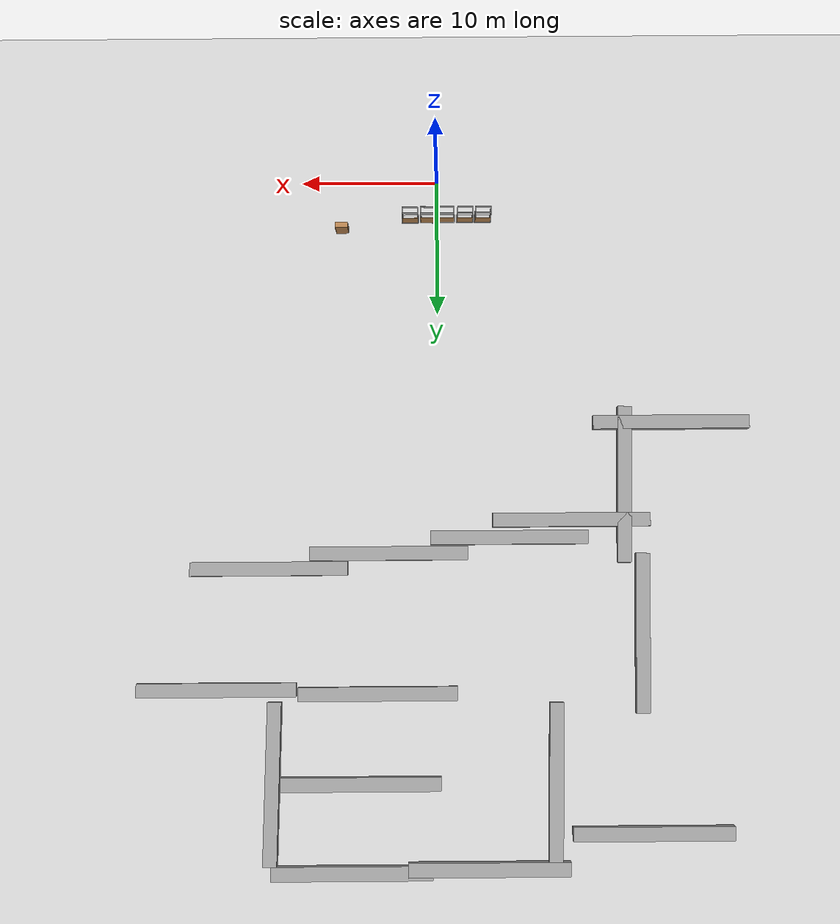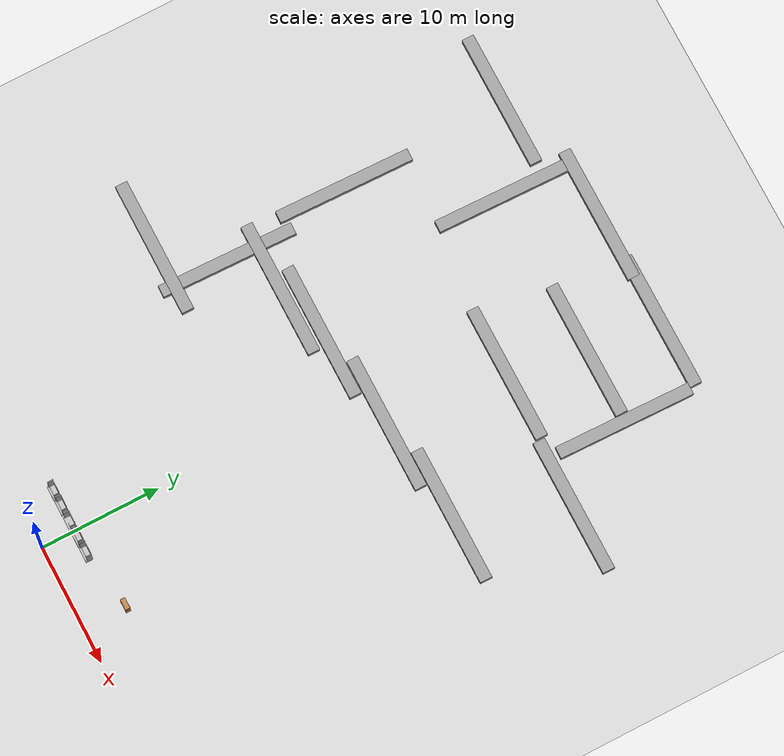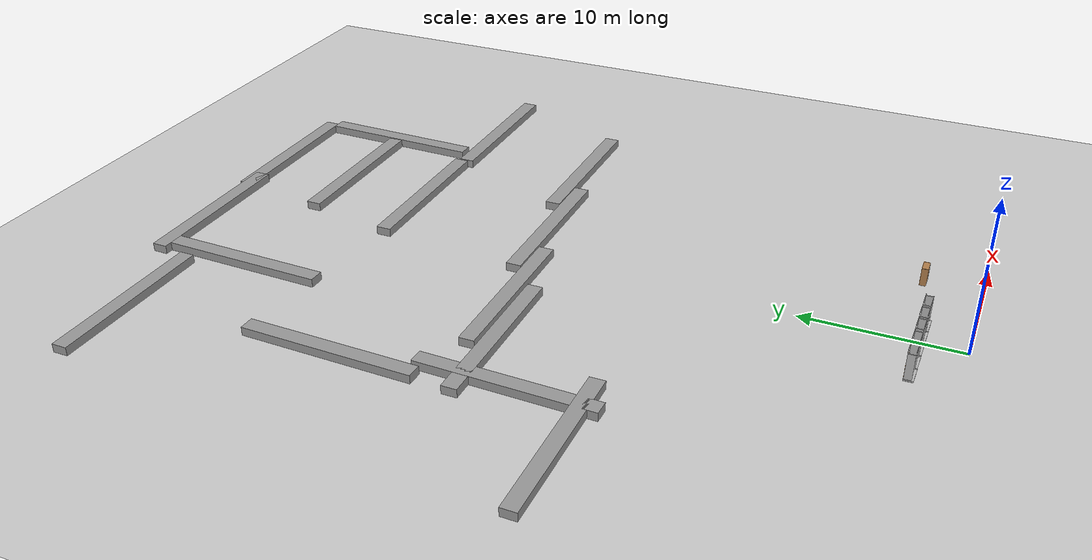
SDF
<sdf version="1.6">
 <world name="default">
  <model name="ground_plane">
   <static>1</static>
   <link name="link">
    <collision name="collision">
     <geometry><plane><normal>0 0 1</normal><size>100 100</size></plane></geometry>
     <surface><friction><ode><mu>100</mu><mu2>50</mu2></ode></friction></surface>
    </collision>
    <visual name="visual">
     <cast_shadows>0</cast_shadows>
     <geometry><plane><normal>0 0 1</normal><size>100 100</size></plane></geometry>
     <material>
      <script><uri>file://media/materials/scripts/gazebo.material</uri><name>Gazebo/Grey</name></script>
     </material>
    </visual>
   </link>
  </model>
  <model name="frc2016_drawbridge_clone">
   <link name="base">
    <inertial>
     <mass>10</mass>
     <pose>0 0 1 0 -0 0</pose>
     <inertia><ixx>3.64907</ixx><ixy>0</ixy><ixz>0</ixz><iyy>4.67075</iyy><iyz>0</iyz><izz>1.66649</izz></inertia>
    </inertial>
    <visual name="platform">
     <pose>0 0 0.0425 0 -0 0</pose>
     <geometry><box><size>1.27 0.5969 0.085</size></box></geometry>
    </visual>
    <collision name="platform">
     <pose>0 0 0.0425 0 -0 0</pose>
     <geometry><box><size>1.27 0.5969 0.085</size></box></geometry>
    </collision>
    <visual name="right_wall">
     <pose>0.55879 0.04444 0.889 0 -0 0</pose>
     <geometry><box><size>0.05715 0.45698 1.77165</size></box></geometry>
    </visual>
    <collision name="right_wall">
     <pose>0.55879 0.04444 0.889 0 -0 0</pose>
     <geometry><box><size>0.05715 0.45698 1.77165</size></box></geometry>
    </collision>
    <visual name="left_wall">
     <pose>-0.55879 0.04444 0.889 0 -0 0</pose>
     <geometry><box><size>0.05715 0.45698 1.77165</size></box></geometry>
    </visual>
    <collision name="left_wall">
     <pose>-0.55879 0.04444 0.889 0 -0 0</pose>
     <geometry><box><size>0.05715 0.45698 1.77165</size></box></geometry>
    </collision>
    <visual name="front_upper_wall">
     <pose>0 0.27611 1.84286 0 -0 0</pose>
     <geometry><box><size>1.1557 0.006347 0.254</size></box></geometry>
    </visual>
    <collision name="front_upper_wall">
     <pose>0 0.27611 1.84286 0 -0 0</pose>
     <geometry><box><size>1.1557 0.006347 0.254</size></box></geometry>
    </collision>
    <visual name="back_upper_wall">
     <pose>0 -0.18722 1.84286 0 -0 0</pose>
     <geometry><box><size>1.1557 0.006347 0.254</size></box></geometry>
    </visual>
    <collision name="back_upper_wall">
     <pose>0 -0.18722 1.84286 0 -0 0</pose>
     <geometry><box><size>1.1557 0.006347 0.254</size></box></geometry>
    </collision>
   </link>
   <link name="bridge">
    <pose>0 0.28245 0.50577 0 -0 0</pose>
    <inertial>
     <mass>2</mass>
     <pose>0 -0.28245 -0.50577 0 -0 0</pose>
     <inertia>
      <ixx>0.139361</ixx>
      <ixy>0</ixy>
      <ixz>0</ixz>
      <iyy>0.357088</iyy>
      <iyz>0</iyz>
      <izz>0.217741</izz>
     </inertia>
    </inertial>
    <visual name="visual">
     <geometry><box><size>1.14298 0.006347 0.9144</size></box></geometry>
     <material><script><name>Gazebo/WoodFloor</name><uri>__default__</uri></script></material>
    </visual>
    <collision name="collision"><geometry><box><size>1.14298 0.006347 0.9144</size></box></geometry></collision>
   </link>
   <joint name="bridge_joint" type="revolute">
    <pose>0 0 -0.4172 0 -0 0</pose>
    <parent>base</parent>
    <child>bridge</child>
    <axis>
     <xyz>1 0 0</xyz>
     <limit><lower>-2</lower><upper>0</upper></limit>
     <use_parent_model_frame>0</use_parent_model_frame>
     <dynamics><spring_reference>0</spring_reference><spring_stiffness>0</spring_stiffness></dynamics>
    </axis>
   </joint>
   <pose>1.94909 2.77291 -3e-06 -2e-06 4e-06 -0.005775</pose>
  </model>
  <model name="frc2016_drawbridge_clone_4">
   <link name="base">
    <inertial>
     <mass>10</mass>
     <pose>0 0 1 0 -0 0</pose>
     <inertia><ixx>3.64907</ixx><ixy>0</ixy><ixz>0</ixz><iyy>4.67075</iyy><iyz>0</iyz><izz>1.66649</izz></inertia>
    </inertial>
    <visual name="platform">
     <pose>0 0 0.0425 0 -0 0</pose>
     <geometry><box><size>1.27 0.5969 0.085</size></box></geometry>
    </visual>
    <collision name="platform">
     <pose>0 0 0.0425 0 -0 0</pose>
     <geometry><box><size>1.27 0.5969 0.085</size></box></geometry>
    </collision>
    <visual name="right_wall">
     <pose>0.55879 0.04444 0.889 0 -0 0</pose>
     <geometry><box><size>0.05715 0.45698 1.77165</size></box></geometry>
    </visual>
    <collision name="right_wall">
     <pose>0.55879 0.04444 0.889 0 -0 0</pose>
     <geometry><box><size>0.05715 0.45698 1.77165</size></box></geometry>
    </collision>
    <visual name="left_wall">
     <pose>-0.55879 0.04444 0.889 0 -0 0</pose>
     <geometry><box><size>0.05715 0.45698 1.77165</size></box></geometry>
    </visual>
    <collision name="left_wall">
     <pose>-0.55879 0.04444 0.889 0 -0 0</pose>
     <geometry><box><size>0.05715 0.45698 1.77165</size></box></geometry>
    </collision>
    <visual name="front_upper_wall">
     <pose>0 0.27611 1.84286 0 -0 0</pose>
     <geometry><box><size>1.1557 0.006347 0.254</size></box></geometry>
    </visual>
    <collision name="front_upper_wall">
     <pose>0 0.27611 1.84286 0 -0 0</pose>
     <geometry><box><size>1.1557 0.006347 0.254</size></box></geometry>
    </collision>
    <visual name="back_upper_wall">
     <pose>0 -0.18722 1.84286 0 -0 0</pose>
     <geometry><box><size>1.1557 0.006347 0.254</size></box></geometry>
    </visual>
    <collision name="back_upper_wall">
     <pose>0 -0.18722 1.84286 0 -0 0</pose>
     <geometry><box><size>1.1557 0.006347 0.254</size></box></geometry>
    </collision>
   </link>
   <link name="bridge">
    <pose>0 0.28245 0.50577 0 -0 0</pose>
    <inertial>
     <mass>2</mass>
     <pose>0 -0.28245 -0.50577 0 -0 0</pose>
     <inertia>
      <ixx>0.139361</ixx>
      <ixy>0</ixy>
      <ixz>0</ixz>
      <iyy>0.357088</iyy>
      <iyz>0</iyz>
      <izz>0.217741</izz>
     </inertia>
    </inertial>
    <visual name="visual">
     <geometry><box><size>1.14298 0.006347 0.9144</size></box></geometry>
     <material><script><name>Gazebo/WoodFloor</name><uri>__default__</uri></script></material>
    </visual>
    <collision name="collision"><geometry><box><size>1.14298 0.006347 0.9144</size></box></geometry></collision>
   </link>
   <joint name="bridge_joint" type="revolute">
    <pose>0 0 -0.4172 0 -0 0</pose>
    <parent>base</parent>
    <child>bridge</child>
    <axis>
     <xyz>1 0 0</xyz>
     <limit><lower>-2</lower><upper>0</upper></limit>
     <use_parent_model_frame>0</use_parent_model_frame>
     <dynamics><spring_reference>0</spring_reference><spring_stiffness>0</spring_stiffness></dynamics>
    </axis>
   </joint>
   <pose>0.614342 2.77334 1e-06 0 1e-06 -0.011013</pose>
  </model>
  <model name="frc2016_drawbridge_clone_5">
   <link name="base">
    <inertial>
     <mass>10</mass>
     <pose>0 0 1 0 -0 0</pose>
     <inertia><ixx>3.64907</ixx><ixy>0</ixy><ixz>0</ixz><iyy>4.67075</iyy><iyz>0</iyz><izz>1.66649</izz></inertia>
    </inertial>
    <visual name="platform">
     <pose>0 0 0.0425 0 -0 0</pose>
     <geometry><box><size>1.27 0.5969 0.085</size></box></geometry>
    </visual>
    <collision name="platform">
     <pose>0 0 0.0425 0 -0 0</pose>
     <geometry><box><size>1.27 0.5969 0.085</size></box></geometry>
    </collision>
    <visual name="right_wall">
     <pose>0.55879 0.04444 0.889 0 -0 0</pose>
     <geometry><box><size>0.05715 0.45698 1.77165</size></box></geometry>
    </visual>
    <collision name="right_wall">
     <pose>0.55879 0.04444 0.889 0 -0 0</pose>
     <geometry><box><size>0.05715 0.45698 1.77165</size></box></geometry>
    </collision>
    <visual name="left_wall">
     <pose>-0.55879 0.04444 0.889 0 -0 0</pose>
     <geometry><box><size>0.05715 0.45698 1.77165</size></box></geometry>
    </visual>
    <collision name="left_wall">
     <pose>-0.55879 0.04444 0.889 0 -0 0</pose>
     <geometry><box><size>0.05715 0.45698 1.77165</size></box></geometry>
    </collision>
    <visual name="front_upper_wall">
     <pose>0 0.27611 1.84286 0 -0 0</pose>
     <geometry><box><size>1.1557 0.006347 0.254</size></box></geometry>
    </visual>
    <collision name="front_upper_wall">
     <pose>0 0.27611 1.84286 0 -0 0</pose>
     <geometry><box><size>1.1557 0.006347 0.254</size></box></geometry>
    </collision>
    <visual name="back_upper_wall">
     <pose>0 -0.18722 1.84286 0 -0 0</pose>
     <geometry><box><size>1.1557 0.006347 0.254</size></box></geometry>
    </visual>
    <collision name="back_upper_wall">
     <pose>0 -0.18722 1.84286 0 -0 0</pose>
     <geometry><box><size>1.1557 0.006347 0.254</size></box></geometry>
    </collision>
   </link>
   <link name="bridge">
    <pose>0 0.28245 0.50577 0 -0 0</pose>
    <inertial>
     <mass>2</mass>
     <pose>0 -0.28245 -0.50577 0 -0 0</pose>
     <inertia>
      <ixx>0.139361</ixx>
      <ixy>0</ixy>
      <ixz>0</ixz>
      <iyy>0.357088</iyy>
      <iyz>0</iyz>
      <izz>0.217741</izz>
     </inertia>
    </inertial>
    <visual name="visual">
     <geometry><box><size>1.14298 0.006347 0.9144</size></box></geometry>
     <material><script><name>Gazebo/WoodFloor</name><uri>__default__</uri></script></material>
    </visual>
    <collision name="collision"><geometry><box><size>1.14298 0.006347 0.9144</size></box></geometry></collision>
   </link>
   <joint name="bridge_joint" type="revolute">
    <pose>0 0 -0.4172 0 -0 0</pose>
    <parent>base</parent>
    <child>bridge</child>
    <axis>
     <xyz>1 0 0</xyz>
     <limit><lower>-2</lower><upper>0</upper></limit>
     <use_parent_model_frame>0</use_parent_model_frame>
     <dynamics><spring_reference>0</spring_reference><spring_stiffness>0</spring_stiffness></dynamics>
    </axis>
   </joint>
   <pose>-0.702293 2.76554 1e-06 0 -1e-06 -0.012168</pose>
  </model>
  <model name="frc2016_drawbridge_clone_5_clone">
   <link name="base">
    <inertial>
     <mass>10</mass>
     <pose>0 0 1 0 -0 0</pose>
     <inertia><ixx>3.64907</ixx><ixy>0</ixy><ixz>0</ixz><iyy>4.67075</iyy><iyz>0</iyz><izz>1.66649</izz></inertia>
    </inertial>
    <visual name="platform">
     <pose>0 0 0.0425 0 -0 0</pose>
     <geometry><box><size>1.27 0.5969 0.085</size></box></geometry>
    </visual>
    <collision name="platform">
     <pose>0 0 0.0425 0 -0 0</pose>
     <geometry><box><size>1.27 0.5969 0.085</size></box></geometry>
    </collision>
    <visual name="right_wall">
     <pose>0.55879 0.04444 0.889 0 -0 0</pose>
     <geometry><box><size>0.05715 0.45698 1.77165</size></box></geometry>
    </visual>
    <collision name="right_wall">
     <pose>0.55879 0.04444 0.889 0 -0 0</pose>
     <geometry><box><size>0.05715 0.45698 1.77165</size></box></geometry>
    </collision>
    <visual name="left_wall">
     <pose>-0.55879 0.04444 0.889 0 -0 0</pose>
     <geometry><box><size>0.05715 0.45698 1.77165</size></box></geometry>
    </visual>
    <collision name="left_wall">
     <pose>-0.55879 0.04444 0.889 0 -0 0</pose>
     <geometry><box><size>0.05715 0.45698 1.77165</size></box></geometry>
    </collision>
    <visual name="front_upper_wall">
     <pose>0 0.27611 1.84286 0 -0 0</pose>
     <geometry><box><size>1.1557 0.006347 0.254</size></box></geometry>
    </visual>
    <collision name="front_upper_wall">
     <pose>0 0.27611 1.84286 0 -0 0</pose>
     <geometry><box><size>1.1557 0.006347 0.254</size></box></geometry>
    </collision>
    <visual name="back_upper_wall">
     <pose>0 -0.18722 1.84286 0 -0 0</pose>
     <geometry><box><size>1.1557 0.006347 0.254</size></box></geometry>
    </visual>
    <collision name="back_upper_wall">
     <pose>0 -0.18722 1.84286 0 -0 0</pose>
     <geometry><box><size>1.1557 0.006347 0.254</size></box></geometry>
    </collision>
   </link>
   <link name="bridge">
    <pose>0 0.28245 0.50577 0 -0 0</pose>
    <inertial>
     <mass>2</mass>
     <pose>0 -0.28245 -0.50577 0 -0 0</pose>
     <inertia>
      <ixx>0.139361</ixx>
      <ixy>0</ixy>
      <ixz>0</ixz>
      <iyy>0.357088</iyy>
      <iyz>0</iyz>
      <izz>0.217741</izz>
     </inertia>
    </inertial>
    <visual name="visual">
     <geometry><box><size>1.14298 0.006347 0.9144</size></box></geometry>
     <material><script><name>Gazebo/WoodFloor</name><uri>__default__</uri></script></material>
    </visual>
    <collision name="collision"><geometry><box><size>1.14298 0.006347 0.9144</size></box></geometry></collision>
   </link>
   <joint name="bridge_joint" type="revolute">
    <pose>0 0 -0.4172 0 -0 0</pose>
    <parent>base</parent>
    <child>bridge</child>
    <axis>
     <xyz>1 0 0</xyz>
     <limit><lower>-2</lower><upper>0</upper></limit>
     <use_parent_model_frame>0</use_parent_model_frame>
     <dynamics><spring_reference>0</spring_reference><spring_stiffness>0</spring_stiffness></dynamics>
    </axis>
   </joint>
   <pose>-2.09998 2.76695 -4e-06 -3e-06 4e-06 -0.012662</pose>
  </model>
  <model name="frc2016_drawbridge_clone_5_clone_clone">
   <link name="base">
    <inertial>
     <mass>10</mass>
     <pose>0 0 1 0 -0 0</pose>
     <inertia><ixx>3.64907</ixx><ixy>0</ixy><ixz>0</ixz><iyy>4.67075</iyy><iyz>0</iyz><izz>1.66649</izz></inertia>
    </inertial>
    <visual name="platform">
     <pose>0 0 0.0425 0 -0 0</pose>
     <geometry><box><size>1.27 0.5969 0.085</size></box></geometry>
    </visual>
    <collision name="platform">
     <pose>0 0 0.0425 0 -0 0</pose>
     <geometry><box><size>1.27 0.5969 0.085</size></box></geometry>
    </collision>
    <visual name="right_wall">
     <pose>0.55879 0.04444 0.889 0 -0 0</pose>
     <geometry><box><size>0.05715 0.45698 1.77165</size></box></geometry>
    </visual>
    <collision name="right_wall">
     <pose>0.55879 0.04444 0.889 0 -0 0</pose>
     <geometry><box><size>0.05715 0.45698 1.77165</size></box></geometry>
    </collision>
    <visual name="left_wall">
     <pose>-0.55879 0.04444 0.889 0 -0 0</pose>
     <geometry><box><size>0.05715 0.45698 1.77165</size></box></geometry>
    </visual>
    <collision name="left_wall">
     <pose>-0.55879 0.04444 0.889 0 -0 0</pose>
     <geometry><box><size>0.05715 0.45698 1.77165</size></box></geometry>
    </collision>
    <visual name="front_upper_wall">
     <pose>0 0.27611 1.84286 0 -0 0</pose>
     <geometry><box><size>1.1557 0.006347 0.254</size></box></geometry>
    </visual>
    <collision name="front_upper_wall">
     <pose>0 0.27611 1.84286 0 -0 0</pose>
     <geometry><box><size>1.1557 0.006347 0.254</size></box></geometry>
    </collision>
    <visual name="back_upper_wall">
     <pose>0 -0.18722 1.84286 0 -0 0</pose>
     <geometry><box><size>1.1557 0.006347 0.254</size></box></geometry>
    </visual>
    <collision name="back_upper_wall">
     <pose>0 -0.18722 1.84286 0 -0 0</pose>
     <geometry><box><size>1.1557 0.006347 0.254</size></box></geometry>
    </collision>
   </link>
   <link name="bridge">
    <pose>0 0.28245 0.50577 0 -0 0</pose>
    <inertial>
     <mass>2</mass>
     <pose>0 -0.28245 -0.50577 0 -0 0</pose>
     <inertia>
      <ixx>0.139361</ixx>
      <ixy>0</ixy>
      <ixz>0</ixz>
      <iyy>0.357088</iyy>
      <iyz>0</iyz>
      <izz>0.217741</izz>
     </inertia>
    </inertial>
    <visual name="visual">
     <geometry><box><size>1.14298 0.006347 0.9144</size></box></geometry>
     <material><script><name>Gazebo/WoodFloor</name><uri>__default__</uri></script></material>
    </visual>
    <collision name="collision"><geometry><box><size>1.14298 0.006347 0.9144</size></box></geometry></collision>
   </link>
   <joint name="bridge_joint" type="revolute">
    <pose>0 0 -0.4172 0 -0 0</pose>
    <parent>base</parent>
    <child>bridge</child>
    <axis>
     <xyz>1 0 0</xyz>
     <limit><lower>-2</lower><upper>0</upper></limit>
     <use_parent_model_frame>0</use_parent_model_frame>
     <dynamics><spring_reference>0</spring_reference><spring_stiffness>0</spring_stiffness></dynamics>
    </axis>
   </joint>
   <pose>-3.41388 2.76245 0 0 0 -0.005391</pose>
  </model>
  <model name="bookshelf">
   <static>1</static>
   <link name="link">
    <inertial><mass>1</mass></inertial>
    <collision name="back">
     <pose>0 0.005 0.6 0 -0 0</pose>
     <geometry><box><size>0.9 0.01 1.2</size></box></geometry>
    </collision>
    <visual name="visual1">
     <pose>0 0.005 0.6 0 -0 0</pose>
     <geometry><box><size>0.9 0.01 1.2</size></box></geometry>
     <material>
      <script><uri>file://media/materials/scripts/gazebo.material</uri><name>Gazebo/Wood</name></script>
     </material>
    </visual>
    <collision name="left_side">
     <pose>0.45 -0.195 0.6 0 -0 0</pose>
     <geometry><box><size>0.02 0.4 1.2</size></box></geometry>
    </collision>
    <visual name="visual2">
     <pose>0.45 -0.195 0.6 0 -0 0</pose>
     <geometry><box><size>0.02 0.4 1.2</size></box></geometry>
     <material>
      <script><uri>file://media/materials/scripts/gazebo.material</uri><name>Gazebo/Wood</name></script>
     </material>
    </visual>
    <collision name="right_side">
     <pose>-0.45 -0.195 0.6 0 -0 0</pose>
     <geometry><box><size>0.02 0.4 1.2</size></box></geometry>
    </collision>
    <visual name="visual3">
     <pose>-0.45 -0.195 0.6 0 -0 0</pose>
     <geometry><box><size>0.02 0.4 1.2</size></box></geometry>
     <material>
      <script><uri>file://media/materials/scripts/gazebo.material</uri><name>Gazebo/Wood</name></script>
     </material>
    </visual>
    <collision name="bottom">
     <pose>0 -0.195 0.03 0 -0 0</pose>
     <geometry><box><size>0.88 0.4 0.06</size></box></geometry>
    </collision>
    <visual name="visual4">
     <pose>0 -0.195 0.03 0 -0 0</pose>
     <geometry><box><size>0.88 0.4 0.06</size></box></geometry>
     <material>
      <script><uri>file://media/materials/scripts/gazebo.material</uri><name>Gazebo/Wood</name></script>
     </material>
    </visual>
    <collision name="top">
     <pose>0 -0.195 1.19 0 -0 0</pose>
     <geometry><box><size>0.88 0.4 0.02</size></box></geometry>
    </collision>
    <visual name="visual5">
     <pose>0 -0.195 1.19 0 -0 0</pose>
     <geometry><box><size>0.88 0.4 0.02</size></box></geometry>
     <material>
      <script><uri>file://media/materials/scripts/gazebo.material</uri><name>Gazebo/Wood</name></script>
     </material>
    </visual>
    <collision name="low_shelf">
     <pose>0 -0.195 0.43 0 -0 0</pose>
     <geometry><box><size>0.88 0.4 0.02</size></box></geometry>
    </collision>
    <visual name="visual6">
     <pose>0 -0.195 0.43 0 -0 0</pose>
     <geometry><box><size>0.88 0.4 0.02</size></box></geometry>
     <material>
      <script><uri>file://media/materials/scripts/gazebo.material</uri><name>Gazebo/Wood</name></script>
     </material>
    </visual>
    <collision name="high_shelf">
     <pose>0 -0.195 0.8 0 -0 0</pose>
     <geometry><box><size>0.88 0.4 0.02</size></box></geometry>
    </collision>
    <visual name="visual7">
     <pose>0 -0.195 0.8 0 -0 0</pose>
     <geometry><box><size>0.88 0.4 0.02</size></box></geometry>
     <material>
      <script><uri>file://media/materials/scripts/gazebo.material</uri><name>Gazebo/Wood</name></script>
     </material>
    </visual>
   </link>
   <pose>6.99919 3.80873 0 0 -0 0</pose>
  </model>
  <model name="unit_box_0_static_clone_20">
   <link name="link">
    <inertial>
     <mass>11.3696</mass>
     <inertia><ixx>1.89495</ixx><ixy>0</ixy><ixz>0</ixz><iyy>123.426</iyy><iyz>0</iyz><izz>123.426</izz></inertia>
    </inertial>
    <kinematic>1</kinematic>
    <visual name="visual">
     <geometry><box><size>11.3696 1 1</size></box></geometry>
     <material>
      <script><name>Gazebo/Grey</name><uri>file://media/materials/scripts/gazebo.material</uri></script>
      <ambient>0.3 0.3 0.3 1</ambient>
      <diffuse>0.7 0.7 0.7 1</diffuse>
      <specular>0.01 0.01 0.01 1</specular>
      <emissive>0 0 0 1</emissive>
     </material>
    </visual>
    <collision name="collision">
     <geometry><box><size>11.3696 1 1</size></box></geometry>
     <surface>
      <friction>
       <ode><mu>1</mu><mu2>1</mu2><fdir1>0 0 0</fdir1><slip1>0</slip1><slip2>0</slip2></ode>
       <torsional>
        <coefficient>1</coefficient>
        <patch_radius>0</patch_radius>
        <surface_radius>0</surface_radius>
        <use_patch_radius>1</use_patch_radius>
        <ode><slip>0</slip></ode>
       </torsional>
      </friction>
      <bounce><restitution_coefficient>0</restitution_coefficient><threshold>1e+06</threshold></bounce>
      <contact>
       <collide_without_contact>0</collide_without_contact>
       <collide_without_contact_bitmask>1</collide_without_contact_bitmask>
       <collide_bitmask>1</collide_bitmask>
       <ode>
        <soft_cfm>0</soft_cfm>
        <soft_erp>0.2</soft_erp>
        <kp>1e+13</kp>
        <kd>1</kd>
        <max_vel>0.01</max_vel>
        <min_depth>0</min_depth>
       </ode>
       <bullet>
        <split_impulse>1</split_impulse>
        <split_impulse_penetration_threshold>-0.01</split_impulse_penetration_threshold>
        <soft_cfm>0</soft_cfm>
        <soft_erp>0.2</soft_erp>
        <kp>1e+13</kp>
        <kd>1</kd>
       </bullet>
      </contact>
     </surface>
    </collision>
   </link>
   <static>1</static>
   <pose>12.2294 28.7706 0 0 -0 0</pose>
  </model>
  <model name="unit_box_0_static_clone_21">
   <link name="link">
    <inertial>
     <mass>11.3696</mass>
     <inertia><ixx>1.89495</ixx><ixy>0</ixy><ixz>0</ixz><iyy>123.426</iyy><iyz>0</iyz><izz>123.426</izz></inertia>
    </inertial>
    <kinematic>1</kinematic>
    <visual name="visual">
     <geometry><box><size>11.3696 1 1</size></box></geometry>
     <material>
      <script><name>Gazebo/Grey</name><uri>file://media/materials/scripts/gazebo.material</uri></script>
      <ambient>0.3 0.3 0.3 1</ambient>
      <diffuse>0.7 0.7 0.7 1</diffuse>
      <specular>0.01 0.01 0.01 1</specular>
      <emissive>0 0 0 1</emissive>
     </material>
    </visual>
    <collision name="collision">
     <geometry><box><size>11.3696 1 1</size></box></geometry>
     <surface>
      <friction>
       <ode><mu>1</mu><mu2>1</mu2><fdir1>0 0 0</fdir1><slip1>0</slip1><slip2>0</slip2></ode>
       <torsional>
        <coefficient>1</coefficient>
        <patch_radius>0</patch_radius>
        <surface_radius>0</surface_radius>
        <use_patch_radius>1</use_patch_radius>
        <ode><slip>0</slip></ode>
       </torsional>
      </friction>
      <bounce><restitution_coefficient>0</restitution_coefficient><threshold>1e+06</threshold></bounce>
      <contact>
       <collide_without_contact>0</collide_without_contact>
       <collide_without_contact_bitmask>1</collide_without_contact_bitmask>
       <collide_bitmask>1</collide_bitmask>
       <ode>
        <soft_cfm>0</soft_cfm>
        <soft_erp>0.2</soft_erp>
        <kp>1e+13</kp>
        <kd>1</kd>
        <max_vel>0.01</max_vel>
        <min_depth>0</min_depth>
       </ode>
       <bullet>
        <split_impulse>1</split_impulse>
        <split_impulse_penetration_threshold>-0.01</split_impulse_penetration_threshold>
        <soft_cfm>0</soft_cfm>
        <soft_erp>0.2</soft_erp>
        <kp>1e+13</kp>
        <kd>1</kd>
       </bullet>
      </contact>
     </surface>
    </collision>
   </link>
   <static>1</static>
   <pose>3.59934 27.7147 0 0 -0 0</pose>
  </model>
  <model name="unit_box_0_static_clone_22">
   <link name="link">
    <inertial>
     <mass>11.3696</mass>
     <inertia><ixx>1.89495</ixx><ixy>0</ixy><ixz>0</ixz><iyy>123.426</iyy><iyz>0</iyz><izz>123.426</izz></inertia>
    </inertial>
    <kinematic>1</kinematic>
    <visual name="visual">
     <geometry><box><size>11.3696 1 1</size></box></geometry>
     <material>
      <script><name>Gazebo/Grey</name><uri>file://media/materials/scripts/gazebo.material</uri></script>
      <ambient>0.3 0.3 0.3 1</ambient>
      <diffuse>0.7 0.7 0.7 1</diffuse>
      <specular>0.01 0.01 0.01 1</specular>
      <emissive>0 0 0 1</emissive>
     </material>
    </visual>
    <collision name="collision">
     <geometry><box><size>11.3696 1 1</size></box></geometry>
     <surface>
      <friction>
       <ode><mu>1</mu><mu2>1</mu2><fdir1>0 0 0</fdir1><slip1>0</slip1><slip2>0</slip2></ode>
       <torsional>
        <coefficient>1</coefficient>
        <patch_radius>0</patch_radius>
        <surface_radius>0</surface_radius>
        <use_patch_radius>1</use_patch_radius>
        <ode><slip>0</slip></ode>
       </torsional>
      </friction>
      <bounce><restitution_coefficient>0</restitution_coefficient><threshold>1e+06</threshold></bounce>
      <contact>
       <collide_without_contact>0</collide_without_contact>
       <collide_without_contact_bitmask>1</collide_without_contact_bitmask>
       <collide_bitmask>1</collide_bitmask>
       <ode>
        <soft_cfm>0</soft_cfm>
        <soft_erp>0.2</soft_erp>
        <kp>1e+13</kp>
        <kd>1</kd>
        <max_vel>0.01</max_vel>
        <min_depth>0</min_depth>
       </ode>
       <bullet>
        <split_impulse>1</split_impulse>
        <split_impulse_penetration_threshold>-0.01</split_impulse_penetration_threshold>
        <soft_cfm>0</soft_cfm>
        <soft_erp>0.2</soft_erp>
        <kp>1e+13</kp>
        <kd>1</kd>
       </bullet>
      </contact>
     </surface>
    </collision>
   </link>
   <static>1</static>
   <pose>-5.07713 26.6199 0 0 -0 0</pose>
  </model>
  <model name="unit_box_0_static_clone_23">
   <link name="link">
    <inertial>
     <mass>11.3696</mass>
     <inertia><ixx>1.89495</ixx><ixy>0</ixy><ixz>0</ixz><iyy>123.426</iyy><iyz>0</iyz><izz>123.426</izz></inertia>
    </inertial>
    <kinematic>1</kinematic>
    <visual name="visual">
     <geometry><box><size>11.3696 1 1</size></box></geometry>
     <material>
      <script><name>Gazebo/Grey</name><uri>file://media/materials/scripts/gazebo.material</uri></script>
      <ambient>0.3 0.3 0.3 1</ambient>
      <diffuse>0.7 0.7 0.7 1</diffuse>
      <specular>0.01 0.01 0.01 1</specular>
      <emissive>0 0 0 1</emissive>
     </material>
    </visual>
    <collision name="collision">
     <geometry><box><size>11.3696 1 1</size></box></geometry>
     <surface>
      <friction>
       <ode><mu>1</mu><mu2>1</mu2><fdir1>0 0 0</fdir1><slip1>0</slip1><slip2>0</slip2></ode>
       <torsional>
        <coefficient>1</coefficient>
        <patch_radius>0</patch_radius>
        <surface_radius>0</surface_radius>
        <use_patch_radius>1</use_patch_radius>
        <ode><slip>0</slip></ode>
       </torsional>
      </friction>
      <bounce><restitution_coefficient>0</restitution_coefficient><threshold>1e+06</threshold></bounce>
      <contact>
       <collide_without_contact>0</collide_without_contact>
       <collide_without_contact_bitmask>1</collide_without_contact_bitmask>
       <collide_bitmask>1</collide_bitmask>
       <ode>
        <soft_cfm>0</soft_cfm>
        <soft_erp>0.2</soft_erp>
        <kp>1e+13</kp>
        <kd>1</kd>
        <max_vel>0.01</max_vel>
        <min_depth>0</min_depth>
       </ode>
       <bullet>
        <split_impulse>1</split_impulse>
        <split_impulse_penetration_threshold>-0.01</split_impulse_penetration_threshold>
        <soft_cfm>0</soft_cfm>
        <soft_erp>0.2</soft_erp>
        <kp>1e+13</kp>
        <kd>1</kd>
       </bullet>
      </contact>
     </surface>
    </collision>
   </link>
   <static>1</static>
   <pose>-9.57826 25.3681 0 0 -0 0</pose>
  </model>
  <model name="unit_box_0_static_clone_24">
   <link name="link">
    <inertial>
     <mass>11.3696</mass>
     <inertia><ixx>1.89495</ixx><ixy>0</ixy><ixz>0</ixz><iyy>123.426</iyy><iyz>0</iyz><izz>123.426</izz></inertia>
    </inertial>
    <kinematic>1</kinematic>
    <visual name="visual">
     <geometry><box><size>11.3696 1 1</size></box></geometry>
     <material>
      <script><name>Gazebo/Grey</name><uri>file://media/materials/scripts/gazebo.material</uri></script>
      <ambient>0.3 0.3 0.3 1</ambient>
      <diffuse>0.7 0.7 0.7 1</diffuse>
      <specular>0.01 0.01 0.01 1</specular>
      <emissive>0 0 0 1</emissive>
     </material>
    </visual>
    <collision name="collision">
     <geometry><box><size>11.3696 1 1</size></box></geometry>
     <surface>
      <friction>
       <ode><mu>1</mu><mu2>1</mu2><fdir1>0 0 0</fdir1><slip1>0</slip1><slip2>0</slip2></ode>
       <torsional>
        <coefficient>1</coefficient>
        <patch_radius>0</patch_radius>
        <surface_radius>0</surface_radius>
        <use_patch_radius>1</use_patch_radius>
        <ode><slip>0</slip></ode>
       </torsional>
      </friction>
      <bounce><restitution_coefficient>0</restitution_coefficient><threshold>1e+06</threshold></bounce>
      <contact>
       <collide_without_contact>0</collide_without_contact>
       <collide_without_contact_bitmask>1</collide_without_contact_bitmask>
       <collide_bitmask>1</collide_bitmask>
       <ode>
        <soft_cfm>0</soft_cfm>
        <soft_erp>0.2</soft_erp>
        <kp>1e+13</kp>
        <kd>1</kd>
        <max_vel>0.01</max_vel>
        <min_depth>0</min_depth>
       </ode>
       <bullet>
        <split_impulse>1</split_impulse>
        <split_impulse_penetration_threshold>-0.01</split_impulse_penetration_threshold>
        <soft_cfm>0</soft_cfm>
        <soft_erp>0.2</soft_erp>
        <kp>1e+13</kp>
        <kd>1</kd>
       </bullet>
      </contact>
     </surface>
    </collision>
   </link>
   <static>1</static>
   <pose>-16.9634 18.2776 0 0 -0 0</pose>
  </model>
  <model name="unit_box_0_static_clone_35_clone_10">
   <link name="link">
    <inertial>
     <mass>11.3696</mass>
     <inertia><ixx>1.89495</ixx><ixy>0</ixy><ixz>0</ixz><iyy>123.426</iyy><iyz>0</iyz><izz>123.426</izz></inertia>
    </inertial>
    <kinematic>1</kinematic>
    <visual name="visual">
     <geometry><box><size>11.3696 1 1</size></box></geometry>
     <material>
      <script><name>Gazebo/Grey</name><uri>file://media/materials/scripts/gazebo.material</uri></script>
      <ambient>0.3 0.3 0.3 1</ambient>
      <diffuse>0.7 0.7 0.7 1</diffuse>
      <specular>0.01 0.01 0.01 1</specular>
      <emissive>0 0 0 1</emissive>
     </material>
    </visual>
    <collision name="collision">
     <geometry><box><size>11.3696 1 1</size></box></geometry>
     <surface>
      <friction>
       <ode><mu>1</mu><mu2>1</mu2><fdir1>0 0 0</fdir1><slip1>0</slip1><slip2>0</slip2></ode>
       <torsional>
        <coefficient>1</coefficient>
        <patch_radius>0</patch_radius>
        <surface_radius>0</surface_radius>
        <use_patch_radius>1</use_patch_radius>
        <ode><slip>0</slip></ode>
       </torsional>
      </friction>
      <bounce><restitution_coefficient>0</restitution_coefficient><threshold>1e+06</threshold></bounce>
      <contact>
       <collide_without_contact>0</collide_without_contact>
       <collide_without_contact_bitmask>1</collide_without_contact_bitmask>
       <collide_bitmask>1</collide_bitmask>
       <ode>
        <soft_cfm>0</soft_cfm>
        <soft_erp>0.2</soft_erp>
        <kp>1e+13</kp>
        <kd>1</kd>
        <max_vel>0.01</max_vel>
        <min_depth>0</min_depth>
       </ode>
       <bullet>
        <split_impulse>1</split_impulse>
        <split_impulse_penetration_threshold>-0.01</split_impulse_penetration_threshold>
        <soft_cfm>0</soft_cfm>
        <soft_erp>0.2</soft_erp>
        <kp>1e+13</kp>
        <kd>1</kd>
       </bullet>
      </contact>
     </surface>
    </collision>
   </link>
   <static>1</static>
   <pose>-13.4771 22.7973 0 0 0 -1.5917</pose>
  </model>
  <model name="unit_box_0_static_clone_17_clone_0">
   <link name="link">
    <inertial>
     <mass>11.3696</mass>
     <inertia><ixx>1.89495</ixx><ixy>0</ixy><ixz>0</ixz><iyy>123.426</iyy><iyz>0</iyz><izz>123.426</izz></inertia>
    </inertial>
    <kinematic>1</kinematic>
    <visual name="visual">
     <geometry><box><size>11.3696 1 1</size></box></geometry>
     <material>
      <script><name>Gazebo/Grey</name><uri>file://media/materials/scripts/gazebo.material</uri></script>
      <ambient>0.3 0.3 0.3 1</ambient>
      <diffuse>0.7 0.7 0.7 1</diffuse>
      <specular>0.01 0.01 0.01 1</specular>
      <emissive>0 0 0 1</emissive>
     </material>
    </visual>
    <collision name="collision">
     <geometry><box><size>11.3696 1 1</size></box></geometry>
     <surface>
      <friction>
       <ode><mu>1</mu><mu2>1</mu2><fdir1>0 0 0</fdir1><slip1>0</slip1><slip2>0</slip2></ode>
       <torsional>
        <coefficient>1</coefficient>
        <patch_radius>0</patch_radius>
        <surface_radius>0</surface_radius>
        <use_patch_radius>1</use_patch_radius>
        <ode><slip>0</slip></ode>
       </torsional>
      </friction>
      <bounce><restitution_coefficient>0</restitution_coefficient><threshold>1e+06</threshold></bounce>
      <contact>
       <collide_without_contact>0</collide_without_contact>
       <collide_without_contact_bitmask>1</collide_without_contact_bitmask>
       <collide_bitmask>1</collide_bitmask>
       <ode>
        <soft_cfm>0</soft_cfm>
        <soft_erp>0.2</soft_erp>
        <kp>1e+13</kp>
        <kd>1</kd>
        <max_vel>0.01</max_vel>
        <min_depth>0</min_depth>
       </ode>
       <bullet>
        <split_impulse>1</split_impulse>
        <split_impulse_penetration_threshold>-0.01</split_impulse_penetration_threshold>
        <soft_cfm>0</soft_cfm>
        <soft_erp>0.2</soft_erp>
        <kp>1e+13</kp>
        <kd>1</kd>
       </bullet>
      </contact>
     </surface>
    </collision>
   </link>
   <static>1</static>
   <pose>15.9014 37.3673 0 0 -0 0</pose>
  </model>
  <model name="unit_box_0_static_clone_17_clone_1">
   <link name="link">
    <inertial>
     <mass>11.3696</mass>
     <inertia><ixx>1.89495</ixx><ixy>0</ixy><ixz>0</ixz><iyy>123.426</iyy><iyz>0</iyz><izz>123.426</izz></inertia>
    </inertial>
    <kinematic>1</kinematic>
    <visual name="visual">
     <geometry><box><size>11.3696 1 1</size></box></geometry>
     <material>
      <script><name>Gazebo/Grey</name><uri>file://media/materials/scripts/gazebo.material</uri></script>
      <ambient>0.3 0.3 0.3 1</ambient>
      <diffuse>0.7 0.7 0.7 1</diffuse>
      <specular>0.01 0.01 0.01 1</specular>
      <emissive>0 0 0 1</emissive>
     </material>
    </visual>
    <collision name="collision">
     <geometry><box><size>11.3696 1 1</size></box></geometry>
     <surface>
      <friction>
       <ode><mu>1</mu><mu2>1</mu2><fdir1>0 0 0</fdir1><slip1>0</slip1><slip2>0</slip2></ode>
       <torsional>
        <coefficient>1</coefficient>
        <patch_radius>0</patch_radius>
        <surface_radius>0</surface_radius>
        <use_patch_radius>1</use_patch_radius>
        <ode><slip>0</slip></ode>
       </torsional>
      </friction>
      <bounce><restitution_coefficient>0</restitution_coefficient><threshold>1e+06</threshold></bounce>
      <contact>
       <collide_without_contact>0</collide_without_contact>
       <collide_without_contact_bitmask>1</collide_without_contact_bitmask>
       <collide_bitmask>1</collide_bitmask>
       <ode>
        <soft_cfm>0</soft_cfm>
        <soft_erp>0.2</soft_erp>
        <kp>1e+13</kp>
        <kd>1</kd>
        <max_vel>0.01</max_vel>
        <min_depth>0</min_depth>
       </ode>
       <bullet>
        <split_impulse>1</split_impulse>
        <split_impulse_penetration_threshold>-0.01</split_impulse_penetration_threshold>
        <soft_cfm>0</soft_cfm>
        <soft_erp>0.2</soft_erp>
        <kp>1e+13</kp>
        <kd>1</kd>
       </bullet>
      </contact>
     </surface>
    </collision>
   </link>
   <static>1</static>
   <pose>4.39603 37.7067 0 0 -0 0</pose>
  </model>
  <model name="unit_box_0_static_clone_35_clone_11_clone_clone">
   <link name="link">
    <inertial>
     <mass>11.3696</mass>
     <inertia><ixx>1.89495</ixx><ixy>0</ixy><ixz>0</ixz><iyy>123.426</iyy><iyz>0</iyz><izz>123.426</izz></inertia>
    </inertial>
    <kinematic>1</kinematic>
    <visual name="visual">
     <geometry><box><size>11.3696 1 1</size></box></geometry>
     <material>
      <script><name>Gazebo/Grey</name><uri>file://media/materials/scripts/gazebo.material</uri></script>
      <ambient>0.3 0.3 0.3 1</ambient>
      <diffuse>0.7 0.7 0.7 1</diffuse>
      <specular>0.01 0.01 0.01 1</specular>
      <emissive>0 0 0 1</emissive>
     </material>
    </visual>
    <collision name="collision">
     <geometry><box><size>11.3696 1 1</size></box></geometry>
     <surface>
      <friction>
       <ode><mu>1</mu><mu2>1</mu2><fdir1>0 0 0</fdir1><slip1>0</slip1><slip2>0</slip2></ode>
       <torsional>
        <coefficient>1</coefficient>
        <patch_radius>0</patch_radius>
        <surface_radius>0</surface_radius>
        <use_patch_radius>1</use_patch_radius>
        <ode><slip>0</slip></ode>
       </torsional>
      </friction>
      <bounce><restitution_coefficient>0</restitution_coefficient><threshold>1e+06</threshold></bounce>
      <contact>
       <collide_without_contact>0</collide_without_contact>
       <collide_without_contact_bitmask>1</collide_without_contact_bitmask>
       <collide_bitmask>1</collide_bitmask>
       <ode>
        <soft_cfm>0</soft_cfm>
        <soft_erp>0.2</soft_erp>
        <kp>1e+13</kp>
        <kd>1</kd>
        <max_vel>0.01</max_vel>
        <min_depth>0</min_depth>
       </ode>
       <bullet>
        <split_impulse>1</split_impulse>
        <split_impulse_penetration_threshold>-0.01</split_impulse_penetration_threshold>
        <soft_cfm>0</soft_cfm>
        <soft_erp>0.2</soft_erp>
        <kp>1e+13</kp>
        <kd>1</kd>
       </bullet>
      </contact>
     </surface>
    </collision>
   </link>
   <static>1</static>
   <pose>11.8685 43.9251 0 0 0 -1.5917</pose>
  </model>
  <model name="unit_box_0_static_clone_17_clone_1_clone">
   <link name="link">
    <inertial>
     <mass>11.3696</mass>
     <inertia><ixx>1.89495</ixx><ixy>0</ixy><ixz>0</ixz><iyy>123.426</iyy><iyz>0</iyz><izz>123.426</izz></inertia>
    </inertial>
    <kinematic>1</kinematic>
    <visual name="visual">
     <geometry><box><size>11.3696 1 1</size></box></geometry>
     <material>
      <script><name>Gazebo/Grey</name><uri>file://media/materials/scripts/gazebo.material</uri></script>
      <ambient>0.3 0.3 0.3 1</ambient>
      <diffuse>0.7 0.7 0.7 1</diffuse>
      <specular>0.01 0.01 0.01 1</specular>
      <emissive>0 0 0 1</emissive>
     </material>
    </visual>
    <collision name="collision">
     <geometry><box><size>11.3696 1 1</size></box></geometry>
     <surface>
      <friction>
       <ode><mu>1</mu><mu2>1</mu2><fdir1>0 0 0</fdir1><slip1>0</slip1><slip2>0</slip2></ode>
       <torsional>
        <coefficient>1</coefficient>
        <patch_radius>0</patch_radius>
        <surface_radius>0</surface_radius>
        <use_patch_radius>1</use_patch_radius>
        <ode><slip>0</slip></ode>
       </torsional>
      </friction>
      <bounce><restitution_coefficient>0</restitution_coefficient><threshold>1e+06</threshold></bounce>
      <contact>
       <collide_without_contact>0</collide_without_contact>
       <collide_without_contact_bitmask>1</collide_without_contact_bitmask>
       <collide_bitmask>1</collide_bitmask>
       <ode>
        <soft_cfm>0</soft_cfm>
        <soft_erp>0.2</soft_erp>
        <kp>1e+13</kp>
        <kd>1</kd>
        <max_vel>0.01</max_vel>
        <min_depth>0</min_depth>
       </ode>
       <bullet>
        <split_impulse>1</split_impulse>
        <split_impulse_penetration_threshold>-0.01</split_impulse_penetration_threshold>
        <soft_cfm>0</soft_cfm>
        <soft_erp>0.2</soft_erp>
        <kp>1e+13</kp>
        <kd>1</kd>
       </bullet>
      </contact>
     </surface>
    </collision>
   </link>
   <static>1</static>
   <pose>5.59299 44.0017 0 0 -0 0</pose>
  </model>
  <model name="unit_box_0_static_clone_17_clone_1_clone_0">
   <link name="link">
    <inertial>
     <mass>11.3696</mass>
     <inertia><ixx>1.89495</ixx><ixy>0</ixy><ixz>0</ixz><iyy>123.426</iyy><iyz>0</iyz><izz>123.426</izz></inertia>
    </inertial>
    <kinematic>1</kinematic>
    <visual name="visual">
     <geometry><box><size>11.3696 1 1</size></box></geometry>
     <material>
      <script><name>Gazebo/Grey</name><uri>file://media/materials/scripts/gazebo.material</uri></script>
      <ambient>0.3 0.3 0.3 1</ambient>
      <diffuse>0.7 0.7 0.7 1</diffuse>
      <specular>0.01 0.01 0.01 1</specular>
      <emissive>0 0 0 1</emissive>
     </material>
    </visual>
    <collision name="collision">
     <geometry><box><size>11.3696 1 1</size></box></geometry>
     <surface>
      <friction>
       <ode><mu>1</mu><mu2>1</mu2><fdir1>0 0 0</fdir1><slip1>0</slip1><slip2>0</slip2></ode>
       <torsional>
        <coefficient>1</coefficient>
        <patch_radius>0</patch_radius>
        <surface_radius>0</surface_radius>
        <use_patch_radius>1</use_patch_radius>
        <ode><slip>0</slip></ode>
       </torsional>
      </friction>
      <bounce><restitution_coefficient>0</restitution_coefficient><threshold>1e+06</threshold></bounce>
      <contact>
       <collide_without_contact>0</collide_without_contact>
       <collide_without_contact_bitmask>1</collide_without_contact_bitmask>
       <collide_bitmask>1</collide_bitmask>
       <ode>
        <soft_cfm>0</soft_cfm>
        <soft_erp>0.2</soft_erp>
        <kp>1e+13</kp>
        <kd>1</kd>
        <max_vel>0.01</max_vel>
        <min_depth>0</min_depth>
       </ode>
       <bullet>
        <split_impulse>1</split_impulse>
        <split_impulse_penetration_threshold>-0.01</split_impulse_penetration_threshold>
        <soft_cfm>0</soft_cfm>
        <soft_erp>0.2</soft_erp>
        <kp>1e+13</kp>
        <kd>1</kd>
       </bullet>
      </contact>
     </surface>
    </collision>
   </link>
   <static>1</static>
   <pose>6.23412 50.1097 0 0 -0 0</pose>
  </model>
  <model name="unit_box_0_static_clone_17_clone_1_clone_1">
   <link name="link">
    <inertial>
     <mass>11.3696</mass>
     <inertia><ixx>1.89495</ixx><ixy>0</ixy><ixz>0</ixz><iyy>123.426</iyy><iyz>0</iyz><izz>123.426</izz></inertia>
    </inertial>
    <kinematic>1</kinematic>
    <visual name="visual">
     <geometry><box><size>11.3696 1 1</size></box></geometry>
     <material>
      <script><name>Gazebo/Grey</name><uri>file://media/materials/scripts/gazebo.material</uri></script>
      <ambient>0.3 0.3 0.3 1</ambient>
      <diffuse>0.7 0.7 0.7 1</diffuse>
      <specular>0.01 0.01 0.01 1</specular>
      <emissive>0 0 0 1</emissive>
     </material>
    </visual>
    <collision name="collision">
     <geometry><box><size>11.3696 1 1</size></box></geometry>
     <surface>
      <friction>
       <ode><mu>1</mu><mu2>1</mu2><fdir1>0 0 0</fdir1><slip1>0</slip1><slip2>0</slip2></ode>
       <torsional>
        <coefficient>1</coefficient>
        <patch_radius>0</patch_radius>
        <surface_radius>0</surface_radius>
        <use_patch_radius>1</use_patch_radius>
        <ode><slip>0</slip></ode>
       </torsional>
      </friction>
      <bounce><restitution_coefficient>0</restitution_coefficient><threshold>1e+06</threshold></bounce>
      <contact>
       <collide_without_contact>0</collide_without_contact>
       <collide_without_contact_bitmask>1</collide_without_contact_bitmask>
       <collide_bitmask>1</collide_bitmask>
       <ode>
        <soft_cfm>0</soft_cfm>
        <soft_erp>0.2</soft_erp>
        <kp>1e+13</kp>
        <kd>1</kd>
        <max_vel>0.01</max_vel>
        <min_depth>0</min_depth>
       </ode>
       <bullet>
        <split_impulse>1</split_impulse>
        <split_impulse_penetration_threshold>-0.01</split_impulse_penetration_threshold>
        <soft_cfm>0</soft_cfm>
        <soft_erp>0.2</soft_erp>
        <kp>1e+13</kp>
        <kd>1</kd>
       </bullet>
      </contact>
     </surface>
    </collision>
   </link>
   <static>1</static>
   <pose>-3.42606 49.9109 0 0 -0 0</pose>
  </model>
  <model name="unit_box_0_static_clone_35_clone_10_clone">
   <link name="link">
    <inertial>
     <mass>11.3696</mass>
     <inertia><ixx>1.89495</ixx><ixy>0</ixy><ixz>0</ixz><iyy>123.426</iyy><iyz>0</iyz><izz>123.426</izz></inertia>
    </inertial>
    <kinematic>1</kinematic>
    <visual name="visual">
     <geometry><box><size>11.3696 1 1</size></box></geometry>
     <material>
      <script><name>Gazebo/Grey</name><uri>file://media/materials/scripts/gazebo.material</uri></script>
      <ambient>0.3 0.3 0.3 1</ambient>
      <diffuse>0.7 0.7 0.7 1</diffuse>
      <specular>0.01 0.01 0.01 1</specular>
      <emissive>0 0 0 1</emissive>
     </material>
    </visual>
    <collision name="collision">
     <geometry><box><size>11.3696 1 1</size></box></geometry>
     <surface>
      <friction>
       <ode><mu>1</mu><mu2>1</mu2><fdir1>0 0 0</fdir1><slip1>0</slip1><slip2>0</slip2></ode>
       <torsional>
        <coefficient>1</coefficient>
        <patch_radius>0</patch_radius>
        <surface_radius>0</surface_radius>
        <use_patch_radius>1</use_patch_radius>
        <ode><slip>0</slip></ode>
       </torsional>
      </friction>
      <bounce><restitution_coefficient>0</restitution_coefficient><threshold>1e+06</threshold></bounce>
      <contact>
       <collide_without_contact>0</collide_without_contact>
       <collide_without_contact_bitmask>1</collide_without_contact_bitmask>
       <collide_bitmask>1</collide_bitmask>
       <ode>
        <soft_cfm>0</soft_cfm>
        <soft_erp>0.2</soft_erp>
        <kp>1e+13</kp>
        <kd>1</kd>
        <max_vel>0.01</max_vel>
        <min_depth>0</min_depth>
       </ode>
       <bullet>
        <split_impulse>1</split_impulse>
        <split_impulse_penetration_threshold>-0.01</split_impulse_penetration_threshold>
        <soft_cfm>0</soft_cfm>
        <soft_erp>0.2</soft_erp>
        <kp>1e+13</kp>
        <kd>1</kd>
       </bullet>
      </contact>
     </surface>
    </collision>
   </link>
   <static>1</static>
   <pose>-8.19172 44.051 0 0 0 -1.5917</pose>
  </model>
  <model name="unit_box_0_static_clone_17_clone_1_clone_clone">
   <link name="link">
    <inertial>
     <mass>11.3696</mass>
     <inertia><ixx>1.89495</ixx><ixy>0</ixy><ixz>0</ixz><iyy>123.426</iyy><iyz>0</iyz><izz>123.426</izz></inertia>
    </inertial>
    <kinematic>1</kinematic>
    <visual name="visual">
     <geometry><box><size>11.3696 1 1</size></box></geometry>
     <material>
      <script><name>Gazebo/Grey</name><uri>file://media/materials/scripts/gazebo.material</uri></script>
      <ambient>0.3 0.3 0.3 1</ambient>
      <diffuse>0.7 0.7 0.7 1</diffuse>
      <specular>0.01 0.01 0.01 1</specular>
      <emissive>0 0 0 1</emissive>
     </material>
    </visual>
    <collision name="collision">
     <geometry><box><size>11.3696 1 1</size></box></geometry>
     <surface>
      <friction>
       <ode><mu>1</mu><mu2>1</mu2><fdir1>0 0 0</fdir1><slip1>0</slip1><slip2>0</slip2></ode>
       <torsional>
        <coefficient>1</coefficient>
        <patch_radius>0</patch_radius>
        <surface_radius>0</surface_radius>
        <use_patch_radius>1</use_patch_radius>
        <ode><slip>0</slip></ode>
       </torsional>
      </friction>
      <bounce><restitution_coefficient>0</restitution_coefficient><threshold>1e+06</threshold></bounce>
      <contact>
       <collide_without_contact>0</collide_without_contact>
       <collide_without_contact_bitmask>1</collide_without_contact_bitmask>
       <collide_bitmask>1</collide_bitmask>
       <ode>
        <soft_cfm>0</soft_cfm>
        <soft_erp>0.2</soft_erp>
        <kp>1e+13</kp>
        <kd>1</kd>
        <max_vel>0.01</max_vel>
        <min_depth>0</min_depth>
       </ode>
       <bullet>
        <split_impulse>1</split_impulse>
        <split_impulse_penetration_threshold>-0.01</split_impulse_penetration_threshold>
        <soft_cfm>0</soft_cfm>
        <soft_erp>0.2</soft_erp>
        <kp>1e+13</kp>
        <kd>1</kd>
       </bullet>
      </contact>
     </surface>
    </collision>
   </link>
   <static>1</static>
   <pose>-14.9895 47.5402 0 0 -0 0</pose>
  </model>
  <model name="unit_box_0_static_clone_35_clone_10_clone_clone">
   <link name="link">
    <inertial>
     <mass>11.3696</mass>
     <inertia><ixx>1.89495</ixx><ixy>0</ixy><ixz>0</ixz><iyy>123.426</iyy><iyz>0</iyz><izz>123.426</izz></inertia>
    </inertial>
    <kinematic>1</kinematic>
    <visual name="visual">
     <geometry><box><size>11.3696 1 1</size></box></geometry>
     <material>
      <script><name>Gazebo/Grey</name><uri>file://media/materials/scripts/gazebo.material</uri></script>
      <ambient>0.3 0.3 0.3 1</ambient>
      <diffuse>0.7 0.7 0.7 1</diffuse>
      <specular>0.01 0.01 0.01 1</specular>
      <emissive>0 0 0 1</emissive>
     </material>
    </visual>
    <collision name="collision">
     <geometry><box><size>11.3696 1 1</size></box></geometry>
     <surface>
      <friction>
       <ode><mu>1</mu><mu2>1</mu2><fdir1>0 0 0</fdir1><slip1>0</slip1><slip2>0</slip2></ode>
       <torsional>
        <coefficient>1</coefficient>
        <patch_radius>0</patch_radius>
        <surface_radius>0</surface_radius>
        <use_patch_radius>1</use_patch_radius>
        <ode><slip>0</slip></ode>
       </torsional>
      </friction>
      <bounce><restitution_coefficient>0</restitution_coefficient><threshold>1e+06</threshold></bounce>
      <contact>
       <collide_without_contact>0</collide_without_contact>
       <collide_without_contact_bitmask>1</collide_without_contact_bitmask>
       <collide_bitmask>1</collide_bitmask>
       <ode>
        <soft_cfm>0</soft_cfm>
        <soft_erp>0.2</soft_erp>
        <kp>1e+13</kp>
        <kd>1</kd>
        <max_vel>0.01</max_vel>
        <min_depth>0</min_depth>
       </ode>
       <bullet>
        <split_impulse>1</split_impulse>
        <split_impulse_penetration_threshold>-0.01</split_impulse_penetration_threshold>
        <soft_cfm>0</soft_cfm>
        <soft_erp>0.2</soft_erp>
        <kp>1e+13</kp>
        <kd>1</kd>
       </bullet>
      </contact>
     </surface>
    </collision>
   </link>
   <static>1</static>
   <pose>-14.5517 33.5032 0 0 0 -1.5917</pose>
  </model>
 </world>
</sdf>
